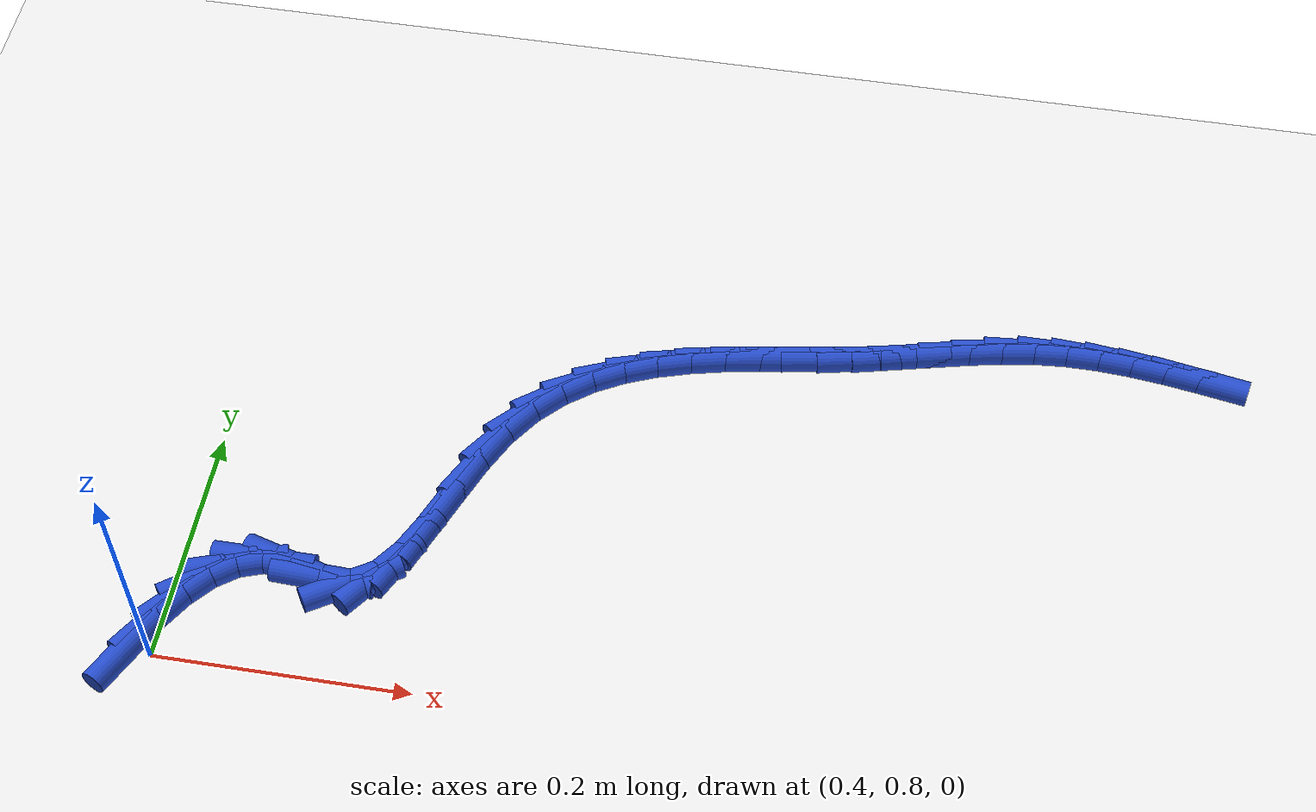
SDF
<sdf version="1.6">
 <world name="default">
  <model name="ground_plane">
   <static>1</static>
   <link name="link">
    <collision name="collision">
     <geometry><plane><normal>0 0 1</normal><size>100 100</size></plane></geometry>
     <surface><friction><ode><mu>100</mu><mu2>50</mu2></ode></friction></surface>
    </collision>
    <visual name="visual">
     <cast_shadows>0</cast_shadows>
     <geometry><plane><normal>0 0 1</normal><size>100 100</size></plane></geometry>
     <material>
      <script><uri>file://media/materials/scripts/gazebo.material</uri><name>Gazebo/WhiteGlow</name></script>
     </material>
    </visual>
   </link>
  </model>
  <model name="line">
   <link name="link_32">
    <pose>0.3854353044039061 0.8011746565636464 0.01 0 1.57 1.1323680816675554</pose>
    <collision name="collision">
     <geometry><cylinder><radius>0.01</radius><length>0.08</length></cylinder></geometry>
    </collision>
    <visual name="visual">
     <material>
      <script><name>Gazebo/Blue</name><uri>file://media/materials/scripts/gazebo.material</uri></script>
     </material>
     <geometry><cylinder><radius>0.01</radius><length>0.08</length></cylinder></geometry>
    </visual>
   </link>
   <link name="link_33">
    <pose>0.39803750476064204 0.8280529379579274 0.01 0 1.57 1.0314799258332108</pose>
    <collision name="collision">
     <geometry><cylinder><radius>0.01</radius><length>0.08</length></cylinder></geometry>
    </collision>
    <visual name="visual">
     <material>
      <script><name>Gazebo/Blue</name><uri>file://media/materials/scripts/gazebo.material</uri></script>
     </material>
     <geometry><cylinder><radius>0.01</radius><length>0.08</length></cylinder></geometry>
    </visual>
   </link>
   <link name="link_34">
    <pose>0.41186958760993647 0.8511641575083962 0.01 0 1.57 0.8770480726345231</pose>
    <collision name="collision">
     <geometry><cylinder><radius>0.01</radius><length>0.08</length></cylinder></geometry>
    </collision>
    <visual name="visual">
     <material>
      <script><name>Gazebo/Blue</name><uri>file://media/materials/scripts/gazebo.material</uri></script>
     </material>
     <geometry><cylinder><radius>0.01</radius><length>0.08</length></cylinder></geometry>
    </visual>
   </link>
   <link name="link_35">
    <pose>0.4272855382702645 0.8697005822065469 0.01 0 1.57 0.6485909962280908</pose>
    <collision name="collision">
     <geometry><cylinder><radius>0.01</radius><length>0.08</length></cylinder></geometry>
    </collision>
    <visual name="visual">
     <material>
      <script><name>Gazebo/Blue</name><uri>file://media/materials/scripts/gazebo.material</uri></script>
     </material>
     <geometry><cylinder><radius>0.01</radius><length>0.08</length></cylinder></geometry>
    </visual>
   </link>
   <link name="link_36">
    <pose>0.44463934206010103 0.8828544790438733 0.01 0 1.57 0.34064443684874574</pose>
    <collision name="collision">
     <geometry><cylinder><radius>0.01</radius><length>0.08</length></cylinder></geometry>
    </collision>
    <visual name="visual">
     <material>
      <script><name>Gazebo/Blue</name><uri>file://media/materials/scripts/gazebo.material</uri></script>
     </material>
     <geometry><cylinder><radius>0.01</radius><length>0.08</length></cylinder></geometry>
    </visual>
   </link>
   <link name="link_37">
    <pose>0.46428498429792153 0.8898181150118699 0.01 0 1.57 -0.0015413020671682885</pose>
    <collision name="collision">
     <geometry><cylinder><radius>0.01</radius><length>0.08</length></cylinder></geometry>
    </collision>
    <visual name="visual">
     <material>
      <script><name>Gazebo/Blue</name><uri>file://media/materials/scripts/gazebo.material</uri></script>
     </material>
     <geometry><cylinder><radius>0.01</radius><length>0.08</length></cylinder></geometry>
    </visual>
   </link>
   <link name="link_38">
    <pose>0.4865764503022006 0.8897837571020303 0.01 0 1.57 -0.2820985060791833</pose>
    <collision name="collision">
     <geometry><cylinder><radius>0.01</radius><length>0.08</length></cylinder></geometry>
    </collision>
    <visual name="visual">
     <material>
      <script><name>Gazebo/Blue</name><uri>file://media/materials/scripts/gazebo.material</uri></script>
     </material>
     <geometry><cylinder><radius>0.01</radius><length>0.08</length></cylinder></geometry>
    </visual>
   </link>
   <link name="link_39">
    <pose>0.5116502056068317 0.8825166875895156 0.01 0 1.57 -0.03689186048376572</pose>
    <collision name="collision">
     <geometry><cylinder><radius>0.01</radius><length>0.08</length></cylinder></geometry>
    </collision>
    <visual name="visual">
     <material>
      <script><name>Gazebo/Blue</name><uri>file://media/materials/scripts/gazebo.material</uri></script>
     </material>
     <geometry><cylinder><radius>0.01</radius><length>0.08</length></cylinder></geometry>
    </visual>
   </link>
   <link name="link_40">
    <pose>0.5343771367277692 0.8816778682358448 0.01 0 1.57 0.5748294485380433</pose>
    <collision name="collision">
     <geometry><cylinder><radius>0.01</radius><length>0.08</length></cylinder></geometry>
    </collision>
    <visual name="visual">
     <material>
      <script><name>Gazebo/Blue</name><uri>file://media/materials/scripts/gazebo.material</uri></script>
     </material>
     <geometry><cylinder><radius>0.01</radius><length>0.08</length></cylinder></geometry>
    </visual>
   </link>
   <link name="link_41">
    <pose>0.5525231641808566 0.8934329255111289 0.01 0 1.57 0.9642928579131175</pose>
    <collision name="collision">
     <geometry><cylinder><radius>0.01</radius><length>0.08</length></cylinder></geometry>
    </collision>
    <visual name="visual">
     <material>
      <script><name>Gazebo/Blue</name><uri>file://media/materials/scripts/gazebo.material</uri></script>
     </material>
     <geometry><cylinder><radius>0.01</radius><length>0.08</length></cylinder></geometry>
    </visual>
   </link>
   <link name="link_42">
    <pose>0.5673442339117954 0.9147973383610759 0.01 0 1.57 1.1431099076795346</pose>
    <collision name="collision">
     <geometry><cylinder><radius>0.01</radius><length>0.08</length></cylinder></geometry>
    </collision>
    <visual name="visual">
     <material>
      <script><name>Gazebo/Blue</name><uri>file://media/materials/scripts/gazebo.material</uri></script>
     </material>
     <geometry><cylinder><radius>0.01</radius><length>0.08</length></cylinder></geometry>
    </visual>
   </link>
   <link name="link_43">
    <pose>0.5800990728211286 0.942779289707718 0.01 0 1.57 1.2094082300645235</pose>
    <collision name="collision">
     <geometry><cylinder><radius>0.01</radius><length>0.08</length></cylinder></geometry>
    </collision>
    <visual name="visual">
     <material>
      <script><name>Gazebo/Blue</name><uri>file://media/materials/scripts/gazebo.material</uri></script>
     </material>
     <geometry><cylinder><radius>0.01</radius><length>0.08</length></cylinder></geometry>
    </visual>
   </link>
   <link name="link_44">
    <pose>0.5920464078093989 0.9743869624730861 0.01 0 1.57 1.2036778455167993</pose>
    <collision name="collision">
     <geometry><cylinder><radius>0.01</radius><length>0.08</length></cylinder></geometry>
    </collision>
    <visual name="visual">
     <material>
      <script><name>Gazebo/Blue</name><uri>file://media/materials/scripts/gazebo.material</uri></script>
     </material>
     <geometry><cylinder><radius>0.01</radius><length>0.08</length></cylinder></geometry>
    </visual>
   </link>
   <link name="link_45">
    <pose>0.6044449657771477 1.0066285395792107 0.01 0 1.57 1.1297113282340545</pose>
    <collision name="collision">
     <geometry><cylinder><radius>0.01</radius><length>0.08</length></cylinder></geometry>
    </collision>
    <visual name="visual">
     <material>
      <script><name>Gazebo/Blue</name><uri>file://media/materials/scripts/gazebo.material</uri></script>
     </material>
     <geometry><cylinder><radius>0.01</radius><length>0.08</length></cylinder></geometry>
    </visual>
   </link>
   <link name="link_46">
    <pose>0.6185533619596426 1.0365124553978236 0.01 0 1.57 0.9854082206253628</pose>
    <collision name="collision">
     <geometry><cylinder><radius>0.01</radius><length>0.08</length></cylinder></geometry>
    </collision>
    <visual name="visual">
     <material>
      <script><name>Gazebo/Blue</name><uri>file://media/materials/scripts/gazebo.material</uri></script>
     </material>
     <geometry><cylinder><radius>0.01</radius><length>0.08</length></cylinder></geometry>
    </visual>
   </link>
   <link name="link_47">
    <pose>0.6353041083996139 1.0617814688200229 0.01 0 1.57 0.8218741246418009</pose>
    <collision name="collision">
     <geometry><cylinder><radius>0.01</radius><length>0.08</length></cylinder></geometry>
    </collision>
    <visual name="visual">
     <material>
      <script><name>Gazebo/Blue</name><uri>file://media/materials/scripts/gazebo.material</uri></script>
     </material>
     <geometry><cylinder><radius>0.01</radius><length>0.08</length></cylinder></geometry>
    </visual>
   </link>
   <link name="link_48">
    <pose>0.6545874013089606 1.0825254426261772 0.01 0 1.57 0.6626611517887325</pose>
    <collision name="collision">
     <geometry><cylinder><radius>0.01</radius><length>0.08</length></cylinder></geometry>
    </collision>
    <visual name="visual">
     <material>
      <script><name>Gazebo/Blue</name><uri>file://media/materials/scripts/gazebo.material</uri></script>
     </material>
     <geometry><cylinder><radius>0.01</radius><length>0.08</length></cylinder></geometry>
    </visual>
   </link>
   <link name="link_49">
    <pose>0.6760856297458828 1.099302183154871 0.01 0 1.57 0.5190954004869909</pose>
    <collision name="collision">
     <geometry><cylinder><radius>0.01</radius><length>0.08</length></cylinder></geometry>
    </collision>
    <visual name="visual">
     <material>
      <script><name>Gazebo/Blue</name><uri>file://media/materials/scripts/gazebo.material</uri></script>
     </material>
     <geometry><cylinder><radius>0.01</radius><length>0.08</length></cylinder></geometry>
    </visual>
   </link>
   <link name="link_50">
    <pose>0.6994811827685814 1.112669496744689 0.01 0 1.57 0.3985153455276044</pose>
    <collision name="collision">
     <geometry><cylinder><radius>0.01</radius><length>0.08</length></cylinder></geometry>
    </collision>
    <visual name="visual">
     <material>
      <script><name>Gazebo/Blue</name><uri>file://media/materials/scripts/gazebo.material</uri></script>
     </material>
     <geometry><cylinder><radius>0.01</radius><length>0.08</length></cylinder></geometry>
    </visual>
   </link>
   <link name="link_51">
    <pose>0.7244564494352566 1.1231851897342162 0.01 0 1.57 0.30367290693040244</pose>
    <collision name="collision">
     <geometry><cylinder><radius>0.01</radius><length>0.08</length></cylinder></geometry>
    </collision>
    <visual name="visual">
     <material>
      <script><name>Gazebo/Blue</name><uri>file://media/materials/scripts/gazebo.material</uri></script>
     </material>
     <geometry><cylinder><radius>0.01</radius><length>0.08</length></cylinder></geometry>
    </visual>
   </link>
   <link name="link_52">
    <pose>0.7506938188041083 1.1314070684620359 0.01 0 1.57 0.23423051114752255</pose>
    <collision name="collision">
     <geometry><cylinder><radius>0.01</radius><length>0.08</length></cylinder></geometry>
    </collision>
    <visual name="visual">
     <material>
      <script><name>Gazebo/Blue</name><uri>file://media/materials/scripts/gazebo.material</uri></script>
     </material>
     <geometry><cylinder><radius>0.01</radius><length>0.08</length></cylinder></geometry>
    </visual>
   </link>
   <link name="link_53">
    <pose>0.7778756799333373 1.1378929392667338 0.01 0 1.57 0.18859506858207967</pose>
    <collision name="collision">
     <geometry><cylinder><radius>0.01</radius><length>0.08</length></cylinder></geometry>
    </collision>
    <visual name="visual">
     <material>
      <script><name>Gazebo/Blue</name><uri>file://media/materials/scripts/gazebo.material</uri></script>
     </material>
     <geometry><cylinder><radius>0.01</radius><length>0.08</length></cylinder></geometry>
    </visual>
   </link>
   <link name="link_54">
    <pose>0.8056844218811434 1.1432006084868935 0.01 0 1.57 0.1651811582211865</pose>
    <collision name="collision">
     <geometry><cylinder><radius>0.01</radius><length>0.08</length></cylinder></geometry>
    </collision>
    <visual name="visual">
     <material>
      <script><name>Gazebo/Blue</name><uri>file://media/materials/scripts/gazebo.material</uri></script>
     </material>
     <geometry><cylinder><radius>0.01</radius><length>0.08</length></cylinder></geometry>
    </visual>
   </link>
   <link name="link_55">
    <pose>0.8338024337057279 1.1478878824611007 0.01 0 1.57 0.16306214590424406</pose>
    <collision name="collision">
     <geometry><cylinder><radius>0.01</radius><length>0.08</length></cylinder></geometry>
    </collision>
    <visual name="visual">
     <material>
      <script><name>Gazebo/Blue</name><uri>file://media/materials/scripts/gazebo.material</uri></script>
     </material>
     <geometry><cylinder><radius>0.01</radius><length>0.08</length></cylinder></geometry>
    </visual>
   </link>
   <link name="link_56">
    <pose>0.8619121044652902 1.1525125675279388 0.01 0 1.57 0.18223267684221986</pose>
    <collision name="collision">
     <geometry><cylinder><radius>0.01</radius><length>0.08</length></cylinder></geometry>
    </collision>
    <visual name="visual">
     <material>
      <script><name>Gazebo/Blue</name><uri>file://media/materials/scripts/gazebo.material</uri></script>
     </material>
     <geometry><cylinder><radius>0.01</radius><length>0.08</length></cylinder></geometry>
    </visual>
   </link>
   <link name="link_57">
    <pose>0.8896958232180312 1.1576324700259932 0.01 0 1.57 0.21848729477399853</pose>
    <collision name="collision">
     <geometry><cylinder><radius>0.01</radius><length>0.08</length></cylinder></geometry>
    </collision>
    <visual name="visual">
     <material>
      <script><name>Gazebo/Blue</name><uri>file://media/materials/scripts/gazebo.material</uri></script>
     </material>
     <geometry><cylinder><radius>0.01</radius><length>0.08</length></cylinder></geometry>
    </visual>
   </link>
   <link name="link_58">
    <pose>0.9168896363579215 1.1636703560956998 0.01 0 1.57 0.2420399223462987</pose>
    <collision name="collision">
     <geometry><cylinder><radius>0.01</radius><length>0.08</length></cylinder></geometry>
    </collision>
    <visual name="visual">
     <material>
      <script><name>Gazebo/Blue</name><uri>file://media/materials/scripts/gazebo.material</uri></script>
     </material>
     <geometry><cylinder><radius>0.01</radius><length>0.08</length></cylinder></geometry>
    </visual>
   </link>
   <link name="link_59">
    <pose>0.9435465077467529 1.1702514010721297 0.01 0 1.57 0.24087109244552238</pose>
    <collision name="collision">
     <geometry><cylinder><radius>0.01</radius><length>0.08</length></cylinder></geometry>
    </collision>
    <visual name="visual">
     <material>
      <script><name>Gazebo/Blue</name><uri>file://media/materials/scripts/gazebo.material</uri></script>
     </material>
     <geometry><cylinder><radius>0.01</radius><length>0.08</length></cylinder></geometry>
    </visual>
   </link>
   <link name="link_60">
    <pose>0.9698353405580692 1.176708994136469 0.01 0 1.57 0.21389174979281778</pose>
    <collision name="collision">
     <geometry><cylinder><radius>0.01</radius><length>0.08</length></cylinder></geometry>
    </collision>
    <visual name="visual">
     <material>
      <script><name>Gazebo/Blue</name><uri>file://media/materials/scripts/gazebo.material</uri></script>
     </material>
     <geometry><cylinder><radius>0.01</radius><length>0.08</length></cylinder></geometry>
    </visual>
   </link>
   <link name="link_61">
    <pose>0.9959252108068503 1.1823760894773447 0.01 0 1.57 0.16014980521952538</pose>
    <collision name="collision">
     <geometry><cylinder><radius>0.01</radius><length>0.08</length></cylinder></geometry>
    </collision>
    <visual name="visual">
     <material>
      <script><name>Gazebo/Blue</name><uri>file://media/materials/scripts/gazebo.material</uri></script>
     </material>
     <geometry><cylinder><radius>0.01</radius><length>0.08</length></cylinder></geometry>
    </visual>
   </link>
   <link name="link_62">
    <pose>1.021985194508077 1.186585641283385 0.01 0 1.57 0.08090081180231525</pose>
    <collision name="collision">
     <geometry><cylinder><radius>0.01</radius><length>0.08</length></cylinder></geometry>
    </collision>
    <visual name="visual">
     <material>
      <script><name>Gazebo/Blue</name><uri>file://media/materials/scripts/gazebo.material</uri></script>
     </material>
     <geometry><cylinder><radius>0.01</radius><length>0.08</length></cylinder></geometry>
    </visual>
   </link>
   <link name="link_63">
    <pose>1.0481773050919463 1.188709239256581 0.01 0 1.57 -0.0008533584031455434</pose>
    <collision name="collision">
     <geometry><cylinder><radius>0.01</radius><length>0.08</length></cylinder></geometry>
    </collision>
    <visual name="visual">
     <material>
      <script><name>Gazebo/Blue</name><uri>file://media/materials/scripts/gazebo.material</uri></script>
     </material>
     <geometry><cylinder><radius>0.01</radius><length>0.08</length></cylinder></geometry>
    </visual>
   </link>
   <link name="link_64">
    <pose>1.074559679235587 1.1886867256304456 0.01 0 1.57 -0.06755084695265966</pose>
    <collision name="collision">
     <geometry><cylinder><radius>0.01</radius><length>0.08</length></cylinder></geometry>
    </collision>
    <visual name="visual">
     <material>
      <script><name>Gazebo/Blue</name><uri>file://media/materials/scripts/gazebo.material</uri></script>
     </material>
     <geometry><cylinder><radius>0.01</radius><length>0.08</length></cylinder></geometry>
    </visual>
   </link>
   <link name="link_65">
    <pose>1.1011114000294535 1.1868904012918973 0.01 0 1.57 -0.1188090589931766</pose>
    <collision name="collision">
     <geometry><cylinder><radius>0.01</radius><length>0.08</length></cylinder></geometry>
    </collision>
    <visual name="visual">
     <material>
      <script><name>Gazebo/Blue</name><uri>file://media/materials/scripts/gazebo.material</uri></script>
     </material>
     <geometry><cylinder><radius>0.01</radius><length>0.08</length></cylinder></geometry>
    </visual>
   </link>
   <link name="link_66">
    <pose>1.1278095689588863 1.1837034073985577 0.01 0 1.57 -0.15512880700084983</pose>
    <collision name="collision">
     <geometry><cylinder><radius>0.01</radius><length>0.08</length></cylinder></geometry>
    </collision>
    <visual name="visual">
     <material>
      <script><name>Gazebo/Blue</name><uri>file://media/materials/scripts/gazebo.material</uri></script>
     </material>
     <geometry><cylinder><radius>0.01</radius><length>0.08</length></cylinder></geometry>
    </visual>
   </link>
   <link name="link_67">
    <pose>1.1546312875092237 1.17950888510805 0.01 0 1.57 -0.17711714763510525</pose>
    <collision name="collision">
     <geometry><cylinder><radius>0.01</radius><length>0.08</length></cylinder></geometry>
    </collision>
    <visual name="visual">
     <material>
      <script><name>Gazebo/Blue</name><uri>file://media/materials/scripts/gazebo.material</uri></script>
     </material>
     <geometry><cylinder><radius>0.01</radius><length>0.08</length></cylinder></geometry>
    </visual>
   </link>
  </model>
 </world>
</sdf>
